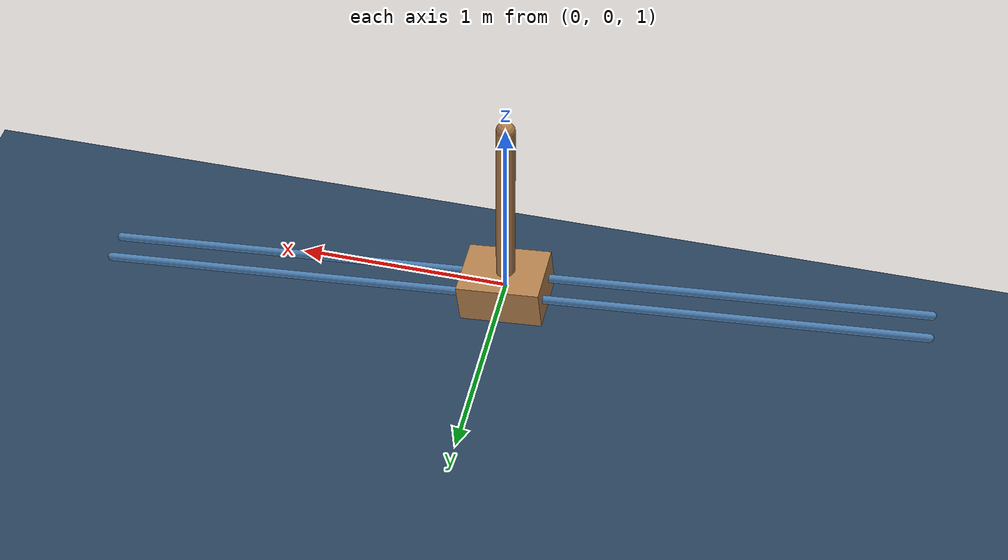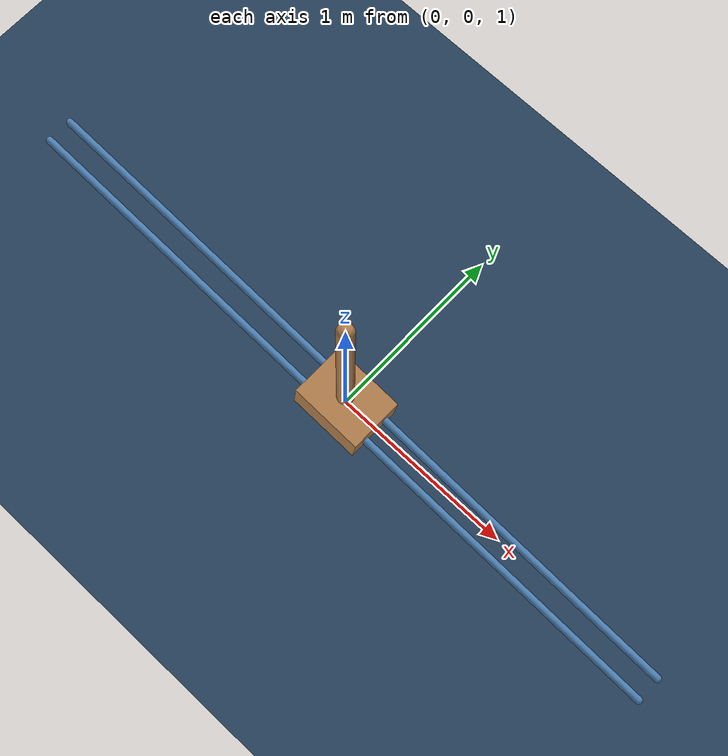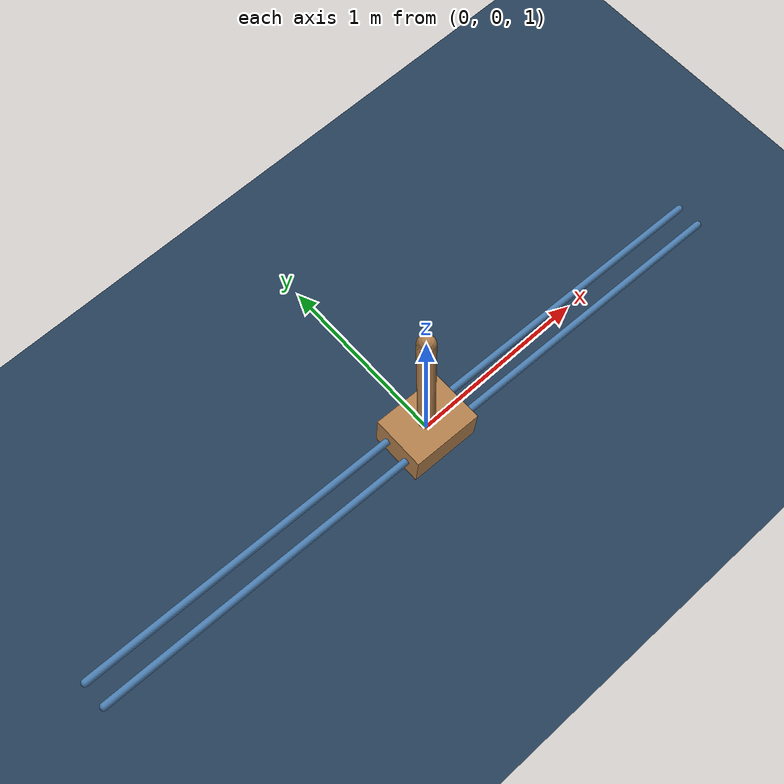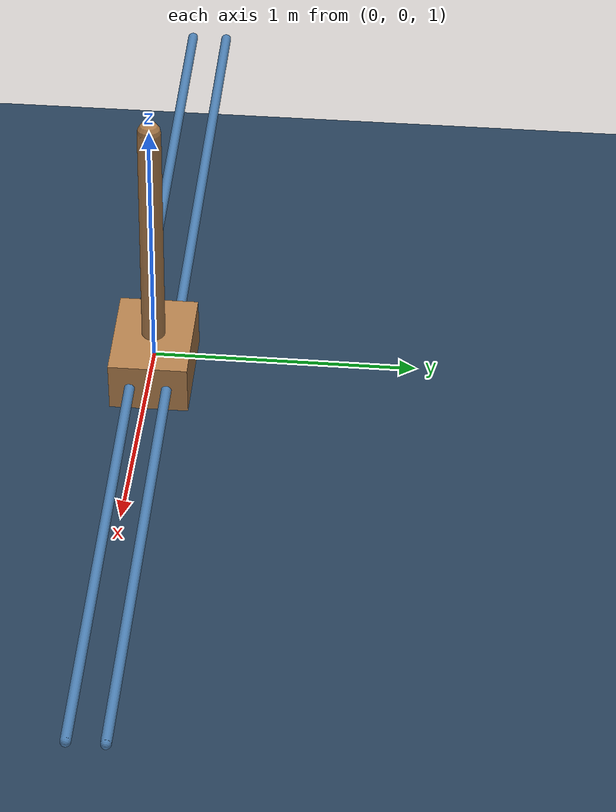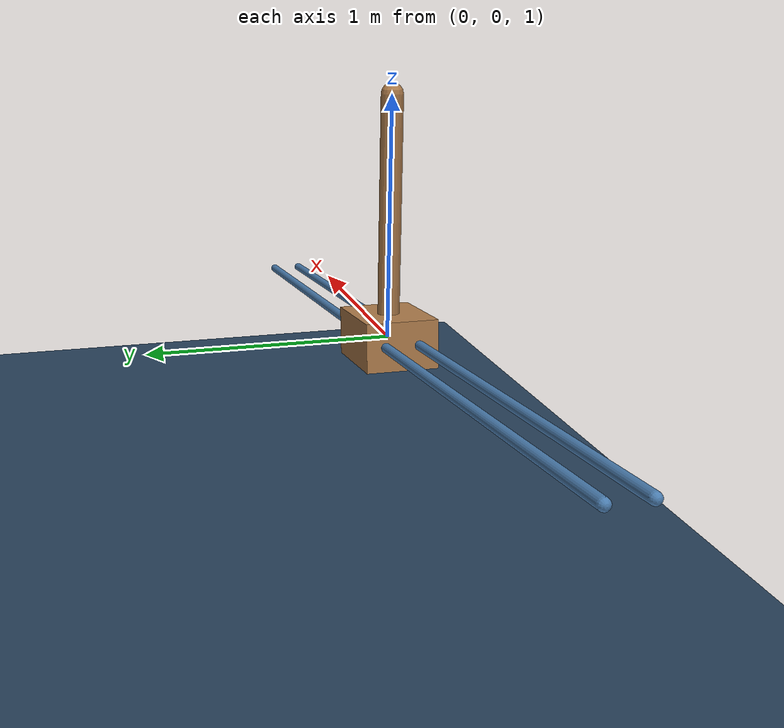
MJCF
<mujoco model="cart-pole">
	<!-- skybox asset -->
	<asset>
		<texture name="skybox" type="skybox" builtin="gradient" rgb1=".4 .6 .8" rgb2="0 0 0"
				width="800" height="800" mark="random" markrgb="1 1 1"/>
	</asset>
	<!-- visuals asset -->
	<visual>
		<headlight ambient=".4 .4 .4" diffuse=".8 .8 .8" specular="0.1 0.1 0.1"/>
		<map znear=".01"/>
		<quality shadowsize="2048"/>
	</visual>
	<!-- materials asset -->
	<asset>
		<texture name="grid" type="2d" builtin="checker" rgb1=".1 .2 .3" rgb2=".2 .3 .4" width="300" height="300" mark="edge" markrgb=".2 .3 .4"/>
		<material name="grid" texture="grid" texrepeat="1 1" texuniform="true" reflectance=".2"/>
		<material name="self" rgba=".7 .5 .3 1"/>
		<material name="self_default" rgba=".7 .5 .3 1"/>
		<material name="self_highlight" rgba="0 .5 .3 1"/>
		<material name="effector" rgba=".7 .4 .2 1"/>
		<material name="effector_default" rgba=".7 .4 .2 1"/>
		<material name="effector_highlight" rgba="0 .5 .3 1"/>
		<material name="decoration" rgba=".3 .5 .7 1"/>
		<material name="eye" rgba="0 .2 1 1"/>
		<material name="target" rgba=".6 .3 .3 1"/>
		<material name="target_default" rgba=".6 .3 .3 1"/>
		<material name="target_highlight" rgba=".6 .3 .3 .4"/>
		<material name="site" rgba=".5 .5 .5 .3"/>
	</asset>

	<option timestep="0.01" integrator="RK4">
		<flag contact="disable" energy="enable"/>
	</option>

	<default>
		<default class="pole">
		<joint type="hinge" axis="0 1 0"  damping="2e-6"/>
		<geom type="capsule" fromto="0 0 0 0 0 1" size="0.045" material="self" mass=".1"/>
		</default>
	</default>

	<worldbody>
		<light name="light" pos="0 0 6"/>
		<camera name="fixed" pos="0 -4 1" zaxis="0 -1 0"/>
		<camera name="lookatcart" mode="targetbody" target="cart" pos="0 -2 2"/>

		<geom name="floor" pos="0 0 -.05" size="4 4 .2" type="plane" material="grid"/>
		<geom name="rail1" type="capsule" pos="0  .07 1" zaxis="1 0 -0.1" size="0.02 2" material="decoration" />
		<geom name="rail2" type="capsule" pos="0 -.07 1" zaxis="1 0 -0.1" size="0.02 2" material="decoration" />

		<body name="cart" pos="0 0 1">
		<joint name="slider" type="slide" limited="true" axis="1 0 -0.1" range="-1.8 1.8" solreflimit=".08 1" damping="5e-4"/>
		<geom name="cart" type="box" size="0.2 0.15 0.1" zaxis="0.1 0 1" material="self"  mass="1"/>
		<body name="pole_1" childclass="pole">
			<joint name="hinge_1"/>
			<geom name="pole_1"/>
		</body>
		</body>
	</worldbody>

	<actuator>
		<motor name="slide" joint="slider" gear="10" ctrllimited="true" ctrlrange="-1 1" />
	</actuator>
</mujoco>
